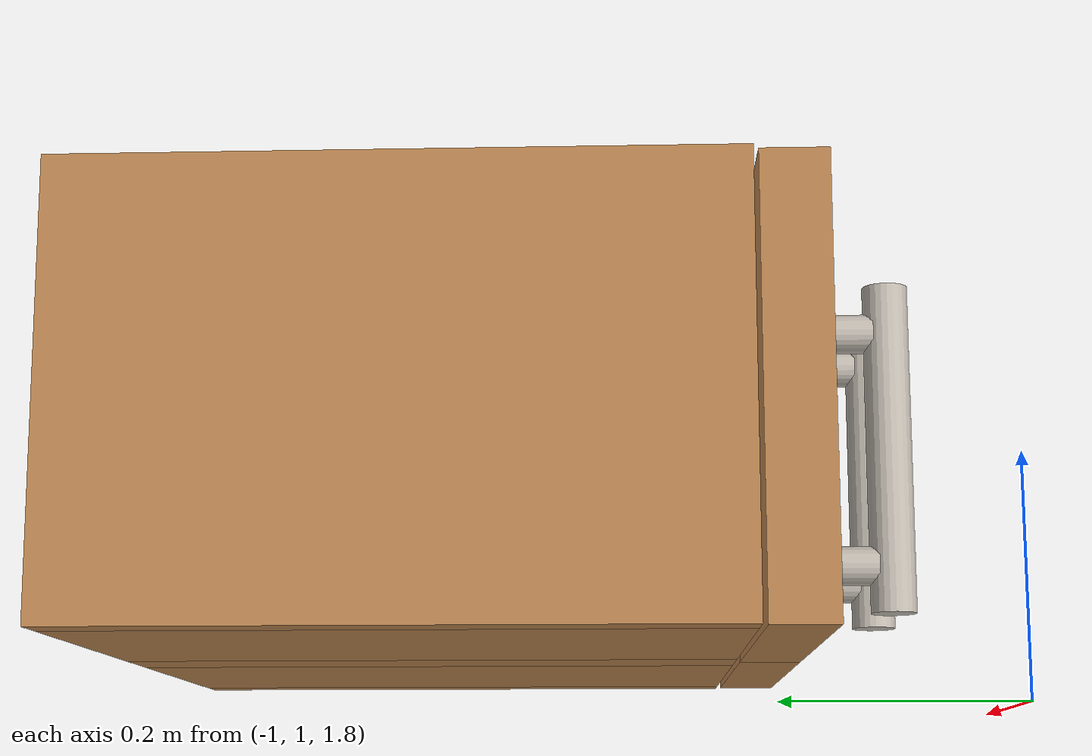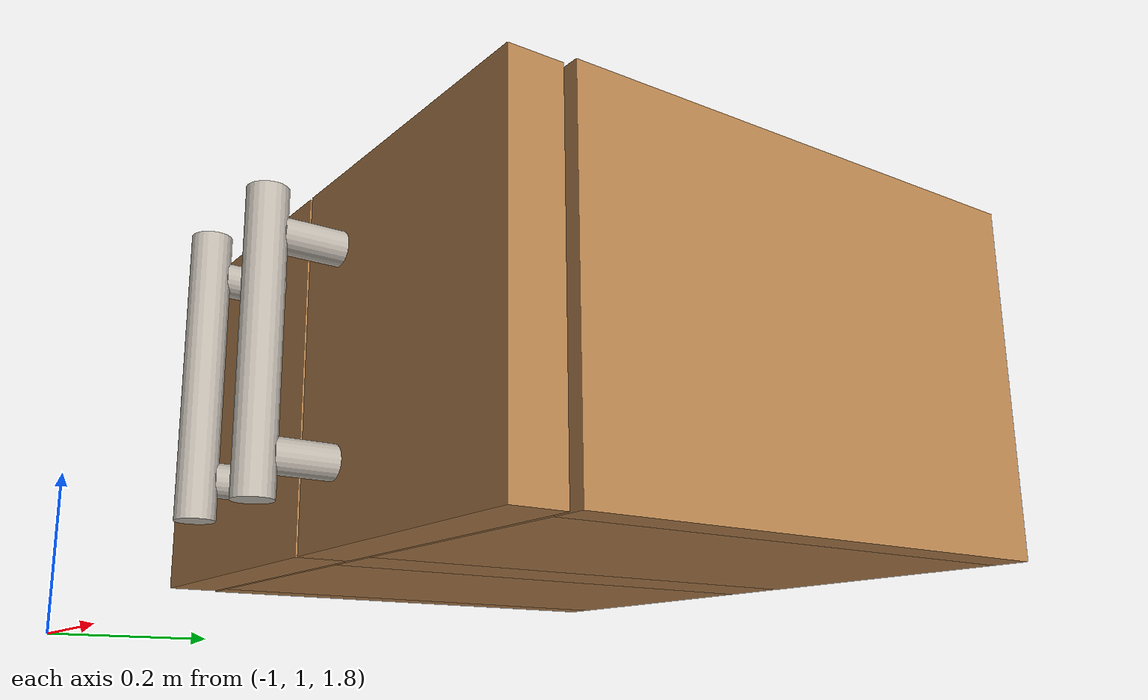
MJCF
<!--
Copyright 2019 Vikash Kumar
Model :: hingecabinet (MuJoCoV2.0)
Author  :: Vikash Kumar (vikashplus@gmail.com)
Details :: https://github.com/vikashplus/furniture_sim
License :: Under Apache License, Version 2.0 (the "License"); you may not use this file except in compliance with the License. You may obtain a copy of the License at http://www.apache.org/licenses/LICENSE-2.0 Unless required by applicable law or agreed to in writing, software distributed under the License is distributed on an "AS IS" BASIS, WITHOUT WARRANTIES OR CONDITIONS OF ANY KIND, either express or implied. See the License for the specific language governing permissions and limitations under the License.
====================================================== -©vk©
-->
<mujoco model="hinge cabinet">
    <compiler angle="radian"/>
        <asset>
        <texture name="T_hinge_wood" type="cube" height="1" width="1" file="kitchen_textures/wood1.png"/>
        <texture name="T_hinge_metal" type="cube" height="1" width="1" file="kitchen_textures/metal0.png"/>

        <material name="M_hinge_wood" texture="T_hinge_wood" texrepeat="3 3" reflectance="0.7" shininess=".4" texuniform="false"/>
        <material name="M_hinge_metal" texture="T_hinge_metal" texrepeat="3 3" reflectance="0.7" shininess=".4" texuniform="false"/>
        <material name="M_hinge_blue" texture="T_hinge_wood" rgba="1 1 1 1" reflectance="0.7" shininess=".4" texuniform="false"/>
        <material name="hinge_collision_blue" rgba="0.3 0.3 1.0 0.5" shininess="0" specular="0"/>
    </asset>

    <default>
        <default class="hingecabinet">
            <joint damping="2" frictionloss="2" armature=".01" limited="true"/>
            <geom conaffinity="0" contype="0" group="1" material="M_hinge_wood" type="mesh"/>
            <default class="hinge_collision">
                <geom conaffinity="1" condim="3" contype="0" group="4" margin="0.001" material="hinge_collision_blue" solimp=".8 .9 .01" solref=".02 1"/>
            </default>
        </default>
    </default>

    <worldbody>
        <body pos="-0.6 1.51 2.0625">
            <body name="hingecab" childclass="hingecabinet">
                <geom material="M_hinge_blue" size="0.04 0.3 0.2" type="box"/>
                <geom material="M_hinge_blue" pos="0.38 0 0" size="0.02 0.3 0.2" type="box"/>
                <geom material="M_hinge_blue" pos="-0.38 0 0" size="0.02 0.3 0.2" type="box"/>
                <geom material="M_hinge_blue" pos="-0.2 0 0.18" size="0.16 0.3 0.02" type="box"/>
                <geom material="M_hinge_blue" pos="-0.2 0 -0.18" size="0.16 0.3 0.02" type="box"/>
                <geom material="M_hinge_blue" pos="0.2 0 -0.18" size="0.16 0.3 0.02" type="box"/>
                <geom material="M_hinge_blue" pos="0.2 0 0.18" size="0.16 0.3 0.02" type="box"/>
                <geom material="M_hinge_blue" pos="-0.2 0.28 0" size="0.16 0.02 0.16" type="box"/>
                <geom material="M_hinge_blue" pos="0.2 0.28 0" size="0.16 0.02 0.16" type="box"/>

                <geom class="hinge_collision" size="0.04 0.3 0.2" type="box" mass=".3"/>
                <geom class="hinge_collision" pos="0.38 0 0" size="0.02 0.3 0.2" type="box" mass=".2"/>
                <geom class="hinge_collision" pos="-0.38 0 0" size="0.02 0.3 0.2" type="box" mass=".2"/>
                <geom class="hinge_collision" pos="-0.2 0 0.18" size="0.16 0.3 0.02" type="box" mass=".2"/>
                <geom class="hinge_collision" pos="-0.2 0 -0.18" size="0.16 0.3 0.02" type="box" mass=".2"/>
                <geom class="hinge_collision" pos="0.2 0 -0.18" size="0.16 0.3 0.02" type="box" mass=".2"/>
                <geom class="hinge_collision" pos="0.2 0 0.18" size="0.16 0.3 0.02" type="box" mass=".2"/>
                <geom class="hinge_collision" pos="-0.2 0.28 0" size="0.16 0.02 0.16" type="box" mass=".2"/>
                <geom class="hinge_collision" pos="0.2 0.28 0" size="0.16 0.02 0.16" type="box" mass=".2"/>
            </body>
            <body name="hingeleftdoor" pos="-0.38 -0.32 0">
                <geom material="M_hinge_metal" pos="0.302 -0.128 0" size="0.022 0.16" type="cylinder"/>
                <geom material="M_hinge_metal" pos="0.302 -0.061 0.114" euler="1.57 0 0" size="0.019 0.053 0.02" type="cylinder"/>
                <geom material="M_hinge_metal" pos="0.302 -0.061 -0.114" euler="1.57 0 0" size="0.019 0.053 0.02" type="cylinder"/>
                <geom material="M_hinge_blue" pos="0.184 -.015 0" size="0.193 0.03 0.2" type="box"/>

                <geom class="hinge_collision" pos="0.184 -.015 0" size="0.193 0.03 0.2" type="box" mass=".2"/>
                <geom class="hinge_collision" pos="0.302 -0.128 0" size="0.022 0.16" type="cylinder" mass=".1"/>
                <geom class="hinge_collision" pos="0.302 -0.061 0.114" euler="1.57 0 0" size="0.019 0.053 0.02" type="cylinder" mass=".02"/>
                <geom class="hinge_collision" pos="0.302 -0.061 -0.114" euler="1.57 0 0" size="0.019 0.053 0.02" type="cylinder" mass=".02"/>
                <site type="sphere" name="leftdoor_site" pos="0.302 -0.128 0" size=".01" group="3" rgba="1 0 0 1"/>
            </body>
            <body name="hingerightdoor" pos="0.38 -0.32 0">
                <geom material="M_hinge_blue" pos="-0.185 -.015 0" size="0.193 0.03 0.2" type="box"/>
                <geom material="M_hinge_metal" pos="-0.302 -0.128 0" size="0.022 0.16" type="cylinder"/>
                <geom material="M_hinge_metal" pos="-0.302 -0.061 -0.114" euler="1.57 0 0" size="0.019 0.053 0.02" type="cylinder"/>
                <geom material="M_hinge_metal" pos="-0.302 -0.061 0.114" euler="1.57 0 0" size="0.019 0.053 0.02" type="cylinder"/>

                <geom class="hinge_collision" pos="-0.302 -0.128 0" size="0.022 0.16" type="cylinder" mass=".1"/>
                <geom class="hinge_collision" pos="-0.302 -0.061 -0.114" euler="1.57 0 0" size="0.019 0.053 0.02" type="cylinder" mass=".02"/>
                <geom class="hinge_collision" pos="-0.302 -0.061 0.114" euler="1.57 0 0" size="0.019 0.053 0.02" type="cylinder" mass=".02"/>
                <geom class="hinge_collision" pos="-0.185 -.015 0" size="0.193 0.03 0.2" type="box" mass=".2"/>
                <site type="sphere" name="rightdoor_site" pos="-0.302 -0.128 0" size=".01" group="3" rgba="0 1 0 1"/>
            </body>
        </body>
    </worldbody>

</mujoco>
